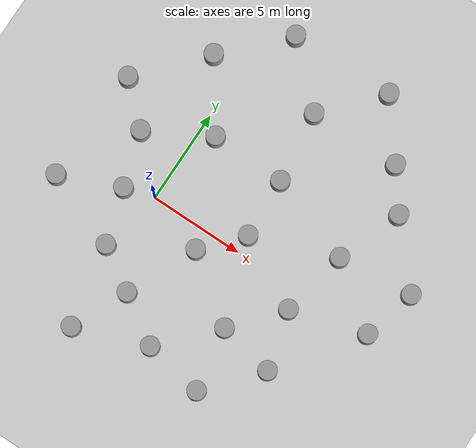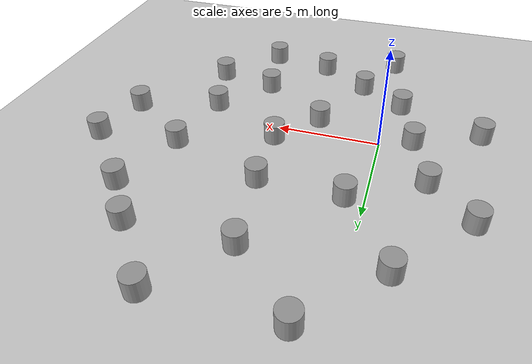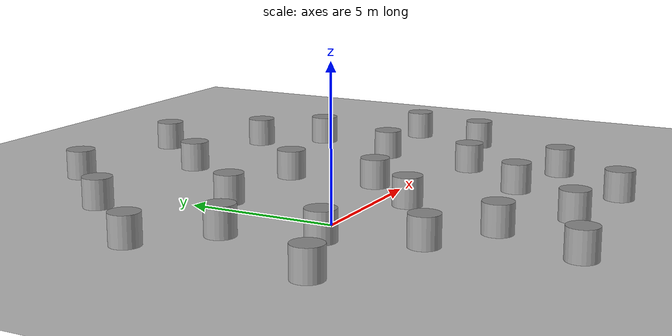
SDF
<sdf version="1.7">
 <world name="default">
  <light name="sun" type="directional">
   <pose>0 0 10 0 -0 0</pose>
   <diffuse>0.8 0.8 0.8 1</diffuse>
   <specular>0.2 0.2 0.2 1</specular>
   <attenuation>
    <range>1000</range>
    <constant>0.9</constant>
    <linear>0.01</linear>
    <quadratic>0.001</quadratic>
   </attenuation>
   <direction>-0.5 0.1 -0.9</direction>
   <spot><inner_angle>0</inner_angle><outer_angle>0</outer_angle><falloff>0</falloff></spot>
  </light>
  <model name="ground_plane">
   <static>1</static>
   <link name="link">
    <collision name="collision">
     <geometry><plane><normal>0 0 1</normal><size>100 100</size></plane></geometry>
     <surface>
      <contact><collide_bitmask>65535</collide_bitmask></contact>
      <friction><ode><mu>100</mu><mu2>50</mu2></ode></friction>
     </surface>
    </collision>
    <visual name="visual">
     <cast_shadows>0</cast_shadows>
     <geometry><plane><normal>0 0 1</normal><size>100 100</size></plane></geometry>
     <material>
      <script><uri>file://media/materials/scripts/gazebo.material</uri><name>Gazebo/Grey</name></script>
     </material>
    </visual>
   </link>
  </model>
  <gravity>0 0 -9.8</gravity>
  <magnetic_field>6e-06 2.3e-05 -4.2e-05</magnetic_field>
  <atmosphere type="adiabatic"/>
  <physics type="ode">
   <max_step_size>0.001</max_step_size>
   <real_time_factor>1</real_time_factor>
   <real_time_update_rate>1000</real_time_update_rate>
  </physics>
  <scene><ambient>0.4 0.4 0.4 1</ambient><background>0.7 0.7 0.7 1</background><shadows>1</shadows></scene>
  <audio><device>default</device></audio>
  <spherical_coordinates>
   <surface_model>EARTH_WGS84</surface_model>
   <latitude_deg>0</latitude_deg>
   <longitude_deg>0</longitude_deg>
   <elevation>0</elevation>
   <heading_deg>0</heading_deg>
  </spherical_coordinates>
  <model name="unit_cylinder">
   <pose>4.96258 0.950075 0.499992 -3e-06 3e-06 0</pose>
   <link name="link">
    <inertial>
     <mass>1</mass>
     <inertia><ixx>0.145833</ixx><ixy>0</ixy><ixz>0</ixz><iyy>0.145833</iyy><iyz>0</iyz><izz>0.125</izz></inertia>
    </inertial>
    <collision name="collision">
     <geometry><cylinder><radius>0.5</radius><length>1</length></cylinder></geometry>
    </collision>
    <visual name="visual">
     <geometry><cylinder><radius>0.5</radius><length>1</length></cylinder></geometry>
     <material>
      <script><name>Gazebo/Grey</name><uri>file://media/materials/scripts/gazebo.material</uri></script>
     </material>
    </visual>
   </link>
  </model>
  <model name="unit_cylinder_clone">
   <pose>3.17849 -1.07422 0.499998 3e-06 -3e-06 0</pose>
   <link name="link">
    <inertial>
     <mass>1</mass>
     <inertia><ixx>0.145833</ixx><ixy>0</ixy><ixz>0</ixz><iyy>0.145833</iyy><iyz>0</iyz><izz>0.125</izz></inertia>
    </inertial>
    <collision name="collision">
     <geometry><cylinder><radius>0.5</radius><length>1</length></cylinder></geometry>
    </collision>
    <visual name="visual">
     <geometry><cylinder><radius>0.5</radius><length>1</length></cylinder></geometry>
     <material>
      <script><name>Gazebo/Grey</name><uri>file://media/materials/scripts/gazebo.material</uri></script>
     </material>
    </visual>
   </link>
  </model>
  <model name="unit_cylinder_clone_0">
   <pose>4.78366 4.12734 0.499992 -3e-06 3e-06 0</pose>
   <link name="link">
    <inertial>
     <mass>1</mass>
     <inertia><ixx>0.145833</ixx><ixy>0</ixy><ixz>0</ixz><iyy>0.145833</iyy><iyz>0</iyz><izz>0.125</izz></inertia>
    </inertial>
    <collision name="collision">
     <geometry><cylinder><radius>0.5</radius><length>1</length></cylinder></geometry>
    </collision>
    <visual name="visual">
     <geometry><cylinder><radius>0.5</radius><length>1</length></cylinder></geometry>
     <material>
      <script><name>Gazebo/Grey</name><uri>file://media/materials/scripts/gazebo.material</uri></script>
     </material>
    </visual>
   </link>
  </model>
  <model name="unit_cylinder_clone_1">
   <pose>6.53802 -3.54264 0.499992 -3e-06 3e-06 0</pose>
   <link name="link">
    <inertial>
     <mass>1</mass>
     <inertia><ixx>0.145833</ixx><ixy>0</ixy><ixz>0</ixz><iyy>0.145833</iyy><iyz>0</iyz><izz>0.125</izz></inertia>
    </inertial>
    <collision name="collision">
     <geometry><cylinder><radius>0.5</radius><length>1</length></cylinder></geometry>
    </collision>
    <visual name="visual">
     <geometry><cylinder><radius>0.5</radius><length>1</length></cylinder></geometry>
     <material>
      <script><name>Gazebo/Grey</name><uri>file://media/materials/scripts/gazebo.material</uri></script>
     </material>
    </visual>
   </link>
  </model>
  <model name="unit_cylinder_clone_2">
   <pose>8.66705 -1.01917 0.499998 3e-06 -3e-06 0</pose>
   <link name="link">
    <inertial>
     <mass>1</mass>
     <inertia><ixx>0.145833</ixx><ixy>0</ixy><ixz>0</ixz><iyy>0.145833</iyy><iyz>0</iyz><izz>0.125</izz></inertia>
    </inertial>
    <collision name="collision">
     <geometry><cylinder><radius>0.5</radius><length>1</length></cylinder></geometry>
    </collision>
    <visual name="visual">
     <geometry><cylinder><radius>0.5</radius><length>1</length></cylinder></geometry>
     <material>
      <script><name>Gazebo/Grey</name><uri>file://media/materials/scripts/gazebo.material</uri></script>
     </material>
    </visual>
   </link>
  </model>
  <model name="unit_cylinder_clone_3">
   <pose>10.6414 5.95627 0.499992 -3e-06 3e-06 0</pose>
   <link name="link">
    <inertial>
     <mass>1</mass>
     <inertia><ixx>0.145833</ixx><ixy>0</ixy><ixz>0</ixz><iyy>0.145833</iyy><iyz>0</iyz><izz>0.125</izz></inertia>
    </inertial>
    <collision name="collision">
     <geometry><cylinder><radius>0.5</radius><length>1</length></cylinder></geometry>
    </collision>
    <visual name="visual">
     <geometry><cylinder><radius>0.5</radius><length>1</length></cylinder></geometry>
     <material>
      <script><name>Gazebo/Grey</name><uri>file://media/materials/scripts/gazebo.material</uri></script>
     </material>
    </visual>
   </link>
  </model>
  <model name="unit_cylinder_clone_4">
   <pose>0.850472 4.19326 0.499992 -3e-06 3e-06 0</pose>
   <link name="link">
    <inertial>
     <mass>1</mass>
     <inertia><ixx>0.145833</ixx><ixy>0</ixy><ixz>0</ixz><iyy>0.145833</iyy><iyz>0</iyz><izz>0.125</izz></inertia>
    </inertial>
    <collision name="collision">
     <geometry><cylinder><radius>0.5</radius><length>1</length></cylinder></geometry>
    </collision>
    <visual name="visual">
     <geometry><cylinder><radius>0.5</radius><length>1</length></cylinder></geometry>
     <material>
      <script><name>Gazebo/Grey</name><uri>file://media/materials/scripts/gazebo.material</uri></script>
     </material>
    </visual>
   </link>
  </model>
  <model name="unit_cylinder_clone_5">
   <pose>-2.44225 2.38178 0.499998 3e-06 -3e-06 0</pose>
   <link name="link">
    <inertial>
     <mass>1</mass>
     <inertia><ixx>0.145833</ixx><ixy>0</ixy><ixz>0</ixz><iyy>0.145833</iyy><iyz>0</iyz><izz>0.125</izz></inertia>
    </inertial>
    <collision name="collision">
     <geometry><cylinder><radius>0.5</radius><length>1</length></cylinder></geometry>
    </collision>
    <visual name="visual">
     <geometry><cylinder><radius>0.5</radius><length>1</length></cylinder></geometry>
     <material>
      <script><name>Gazebo/Grey</name><uri>file://media/materials/scripts/gazebo.material</uri></script>
     </material>
    </visual>
   </link>
  </model>
  <model name="unit_cylinder_clone_6">
   <pose>-1.54565 -0.482534 0.499992 -3e-06 3e-06 0</pose>
   <link name="link">
    <inertial>
     <mass>1</mass>
     <inertia><ixx>0.145833</ixx><ixy>0</ixy><ixz>0</ixz><iyy>0.145833</iyy><iyz>0</iyz><izz>0.125</izz></inertia>
    </inertial>
    <collision name="collision">
     <geometry><cylinder><radius>0.5</radius><length>1</length></cylinder></geometry>
    </collision>
    <visual name="visual">
     <geometry><cylinder><radius>0.5</radius><length>1</length></cylinder></geometry>
     <material>
      <script><name>Gazebo/Grey</name><uri>file://media/materials/scripts/gazebo.material</uri></script>
     </material>
    </visual>
   </link>
  </model>
  <model name="unit_cylinder_clone_7">
   <pose>-0.672013 -3.34672 0.499998 3e-06 -3e-06 0</pose>
   <link name="link">
    <inertial>
     <mass>1</mass>
     <inertia><ixx>0.145833</ixx><ixy>0</ixy><ixz>0</ixz><iyy>0.145833</iyy><iyz>0</iyz><izz>0.125</izz></inertia>
    </inertial>
    <collision name="collision">
     <geometry><cylinder><radius>0.5</radius><length>1</length></cylinder></geometry>
    </collision>
    <visual name="visual">
     <geometry><cylinder><radius>0.5</radius><length>1</length></cylinder></geometry>
     <material>
      <script><name>Gazebo/Grey</name><uri>file://media/materials/scripts/gazebo.material</uri></script>
     </material>
    </visual>
   </link>
  </model>
  <model name="unit_cylinder_clone_8">
   <pose>1.5241 -4.74566 0.499992 -3e-06 3e-06 0</pose>
   <link name="link">
    <inertial>
     <mass>1</mass>
     <inertia><ixx>0.145833</ixx><ixy>0</ixy><ixz>0</ixz><iyy>0.145833</iyy><iyz>0</iyz><izz>0.125</izz></inertia>
    </inertial>
    <collision name="collision">
     <geometry><cylinder><radius>0.5</radius><length>1</length></cylinder></geometry>
    </collision>
    <visual name="visual">
     <geometry><cylinder><radius>0.5</radius><length>1</length></cylinder></geometry>
     <material>
      <script><name>Gazebo/Grey</name><uri>file://media/materials/scripts/gazebo.material</uri></script>
     </material>
    </visual>
   </link>
  </model>
  <model name="unit_cylinder_clone_9">
   <pose>3.97369 -6.32839 0.499998 3e-06 -4e-06 0</pose>
   <link name="link">
    <inertial>
     <mass>1</mass>
     <inertia><ixx>0.145833</ixx><ixy>0</ixy><ixz>0</ixz><iyy>0.145833</iyy><iyz>0</iyz><izz>0.125</izz></inertia>
    </inertial>
    <collision name="collision">
     <geometry><cylinder><radius>0.5</radius><length>1</length></cylinder></geometry>
    </collision>
    <visual name="visual">
     <geometry><cylinder><radius>0.5</radius><length>1</length></cylinder></geometry>
     <material>
      <script><name>Gazebo/Grey</name><uri>file://media/materials/scripts/gazebo.material</uri></script>
     </material>
    </visual>
   </link>
  </model>
  <model name="unit_cylinder_clone_10">
   <pose>4.31686 7.89134 0.499998 3e-06 -4e-06 0</pose>
   <link name="link">
    <inertial>
     <mass>1</mass>
     <inertia><ixx>0.145833</ixx><ixy>0</ixy><ixz>0</ixz><iyy>0.145833</iyy><iyz>0</iyz><izz>0.125</izz></inertia>
    </inertial>
    <collision name="collision">
     <geometry><cylinder><radius>0.5</radius><length>1</length></cylinder></geometry>
    </collision>
    <visual name="visual">
     <geometry><cylinder><radius>0.5</radius><length>1</length></cylinder></geometry>
     <material>
      <script><name>Gazebo/Grey</name><uri>file://media/materials/scripts/gazebo.material</uri></script>
     </material>
    </visual>
   </link>
  </model>
  <model name="unit_cylinder_clone_11">
   <pose>13.3309 2.95451 0.499998 3e-06 -4e-06 0</pose>
   <link name="link">
    <inertial>
     <mass>1</mass>
     <inertia><ixx>0.145833</ixx><ixy>0</ixy><ixz>0</ixz><iyy>0.145833</iyy><iyz>0</iyz><izz>0.125</izz></inertia>
    </inertial>
    <collision name="collision">
     <geometry><cylinder><radius>0.5</radius><length>1</length></cylinder></geometry>
    </collision>
    <visual name="visual">
     <geometry><cylinder><radius>0.5</radius><length>1</length></cylinder></geometry>
     <material>
      <script><name>Gazebo/Grey</name><uri>file://media/materials/scripts/gazebo.material</uri></script>
     </material>
    </visual>
   </link>
  </model>
  <model name="unit_cylinder_clone_12">
   <pose>9.12466 7.98218 0.499998 3e-06 -4e-06 0</pose>
   <link name="link">
    <inertial>
     <mass>1</mass>
     <inertia><ixx>0.145833</ixx><ixy>0</ixy><ixz>0</ixz><iyy>0.145833</iyy><iyz>0</iyz><izz>0.125</izz></inertia>
    </inertial>
    <collision name="collision">
     <geometry><cylinder><radius>0.5</radius><length>1</length></cylinder></geometry>
    </collision>
    <visual name="visual">
     <geometry><cylinder><radius>0.5</radius><length>1</length></cylinder></geometry>
     <material>
      <script><name>Gazebo/Grey</name><uri>file://media/materials/scripts/gazebo.material</uri></script>
     </material>
    </visual>
   </link>
  </model>
  <model name="unit_cylinder_clone_13">
   <pose>9.36702 2.54421 0.499998 3e-06 -4e-06 0</pose>
   <link name="link">
    <inertial>
     <mass>1</mass>
     <inertia><ixx>0.145833</ixx><ixy>0</ixy><ixz>0</ixz><iyy>0.145833</iyy><iyz>0</iyz><izz>0.125</izz></inertia>
    </inertial>
    <collision name="collision">
     <geometry><cylinder><radius>0.5</radius><length>1</length></cylinder></geometry>
    </collision>
    <visual name="visual">
     <geometry><cylinder><radius>0.5</radius><length>1</length></cylinder></geometry>
     <material>
      <script><name>Gazebo/Grey</name><uri>file://media/materials/scripts/gazebo.material</uri></script>
     </material>
    </visual>
   </link>
  </model>
  <model name="unit_cylinder_clone_14">
   <pose>9.47966 -4.12616 0.499992 -4e-06 4e-06 0</pose>
   <link name="link">
    <inertial>
     <mass>1</mass>
     <inertia><ixx>0.145833</ixx><ixy>0</ixy><ixz>0</ixz><iyy>0.145833</iyy><iyz>0</iyz><izz>0.125</izz></inertia>
    </inertial>
    <collision name="collision">
     <geometry><cylinder><radius>0.5</radius><length>1</length></cylinder></geometry>
    </collision>
    <visual name="visual">
     <geometry><cylinder><radius>0.5</radius><length>1</length></cylinder></geometry>
     <material>
      <script><name>Gazebo/Grey</name><uri>file://media/materials/scripts/gazebo.material</uri></script>
     </material>
    </visual>
   </link>
  </model>
  <model name="unit_cylinder_clone_15">
   <pose>12.6127 0.126071 0.499998 3e-06 4e-06 -0</pose>
   <link name="link">
    <inertial>
     <mass>1</mass>
     <inertia><ixx>0.145833</ixx><ixy>0</ixy><ixz>0</ixz><iyy>0.145833</iyy><iyz>0</iyz><izz>0.125</izz></inertia>
    </inertial>
    <collision name="collision">
     <geometry><cylinder><radius>0.5</radius><length>1</length></cylinder></geometry>
    </collision>
    <visual name="visual">
     <geometry><cylinder><radius>0.5</radius><length>1</length></cylinder></geometry>
     <material>
      <script><name>Gazebo/Grey</name><uri>file://media/materials/scripts/gazebo.material</uri></script>
     </material>
    </visual>
   </link>
  </model>
  <model name="unit_cylinder_clone_16">
   <pose>1.3772 10.6841 0.499998 3e-06 4e-06 -0</pose>
   <link name="link">
    <inertial>
     <mass>1</mass>
     <inertia><ixx>0.145833</ixx><ixy>0</ixy><ixz>0</ixz><iyy>0.145833</iyy><iyz>0</iyz><izz>0.125</izz></inertia>
    </inertial>
    <collision name="collision">
     <geometry><cylinder><radius>0.5</radius><length>1</length></cylinder></geometry>
    </collision>
    <visual name="visual">
     <geometry><cylinder><radius>0.5</radius><length>1</length></cylinder></geometry>
     <material>
      <script><name>Gazebo/Grey</name><uri>file://media/materials/scripts/gazebo.material</uri></script>
     </material>
    </visual>
   </link>
  </model>
  <model name="unit_cylinder_clone_17">
   <pose>-1.53612 7.61943 0.499992 -3e-06 -4e-06 -0</pose>
   <link name="link">
    <inertial>
     <mass>1</mass>
     <inertia><ixx>0.145833</ixx><ixy>0</ixy><ixz>0</ixz><iyy>0.145833</iyy><iyz>0</iyz><izz>0.125</izz></inertia>
    </inertial>
    <collision name="collision">
     <geometry><cylinder><radius>0.5</radius><length>1</length></cylinder></geometry>
    </collision>
    <visual name="visual">
     <geometry><cylinder><radius>0.5</radius><length>1</length></cylinder></geometry>
     <material>
      <script><name>Gazebo/Grey</name><uri>file://media/materials/scripts/gazebo.material</uri></script>
     </material>
    </visual>
   </link>
  </model>
  <model name="unit_cylinder_clone_18">
   <pose>6.89151 10.8046 0.499993 -3e-06 -3e-06 0</pose>
   <link name="link">
    <inertial>
     <mass>1</mass>
     <inertia><ixx>0.145833</ixx><ixy>0</ixy><ixz>0</ixz><iyy>0.145833</iyy><iyz>0</iyz><izz>0.125</izz></inertia>
    </inertial>
    <collision name="collision">
     <geometry><cylinder><radius>0.5</radius><length>1</length></cylinder></geometry>
    </collision>
    <visual name="visual">
     <geometry><cylinder><radius>0.5</radius><length>1</length></cylinder></geometry>
     <material>
      <script><name>Gazebo/Grey</name><uri>file://media/materials/scripts/gazebo.material</uri></script>
     </material>
    </visual>
   </link>
  </model>
  <model name="unit_cylinder_clone_19">
   <pose>-4.47022 4.28648 0.499997 3e-06 3e-06 0</pose>
   <link name="link">
    <inertial>
     <mass>1</mass>
     <inertia><ixx>0.145833</ixx><ixy>0</ixy><ixz>0</ixz><iyy>0.145833</iyy><iyz>0</iyz><izz>0.125</izz></inertia>
    </inertial>
    <collision name="collision">
     <geometry><cylinder><radius>0.5</radius><length>1</length></cylinder></geometry>
    </collision>
    <visual name="visual">
     <geometry><cylinder><radius>0.5</radius><length>1</length></cylinder></geometry>
     <material>
      <script><name>Gazebo/Grey</name><uri>file://media/materials/scripts/gazebo.material</uri></script>
     </material>
    </visual>
   </link>
  </model>
  <model name="unit_cylinder_clone_20">
   <pose>-4.7147 -1.80252 0.499997 3e-06 3e-06 0</pose>
   <link name="link">
    <inertial>
     <mass>1</mass>
     <inertia><ixx>0.145833</ixx><ixy>0</ixy><ixz>0</ixz><iyy>0.145833</iyy><iyz>0</iyz><izz>0.125</izz></inertia>
    </inertial>
    <collision name="collision">
     <geometry><cylinder><radius>0.5</radius><length>1</length></cylinder></geometry>
    </collision>
    <visual name="visual">
     <geometry><cylinder><radius>0.5</radius><length>1</length></cylinder></geometry>
     <material>
      <script><name>Gazebo/Grey</name><uri>file://media/materials/scripts/gazebo.material</uri></script>
     </material>
    </visual>
   </link>
  </model>
  <model name="unit_cylinder_clone_21">
   <pose>0.173702 -7.68343 0.499993 -3e-06 -4e-06 -0</pose>
   <link name="link">
    <inertial>
     <mass>1</mass>
     <inertia><ixx>0.145833</ixx><ixy>0</ixy><ixz>0</ixz><iyy>0.145833</iyy><iyz>0</iyz><izz>0.125</izz></inertia>
    </inertial>
    <collision name="collision">
     <geometry><cylinder><radius>0.5</radius><length>1</length></cylinder></geometry>
    </collision>
    <visual name="visual">
     <geometry><cylinder><radius>0.5</radius><length>1</length></cylinder></geometry>
     <material>
      <script><name>Gazebo/Grey</name><uri>file://media/materials/scripts/gazebo.material</uri></script>
     </material>
    </visual>
   </link>
  </model>
  <model name="unit_cylinder_clone_22">
   <pose>7.10756 -6.8907 0.499993 -3e-06 -4e-06 -0</pose>
   <link name="link">
    <inertial>
     <mass>1</mass>
     <inertia><ixx>0.145833</ixx><ixy>0</ixy><ixz>0</ixz><iyy>0.145833</iyy><iyz>0</iyz><izz>0.125</izz></inertia>
    </inertial>
    <collision name="collision">
     <geometry><cylinder><radius>0.5</radius><length>1</length></cylinder></geometry>
    </collision>
    <visual name="visual">
     <geometry><cylinder><radius>0.5</radius><length>1</length></cylinder></geometry>
     <material>
      <script><name>Gazebo/Grey</name><uri>file://media/materials/scripts/gazebo.material</uri></script>
     </material>
    </visual>
   </link>
  </model>
 </world>
</sdf>
